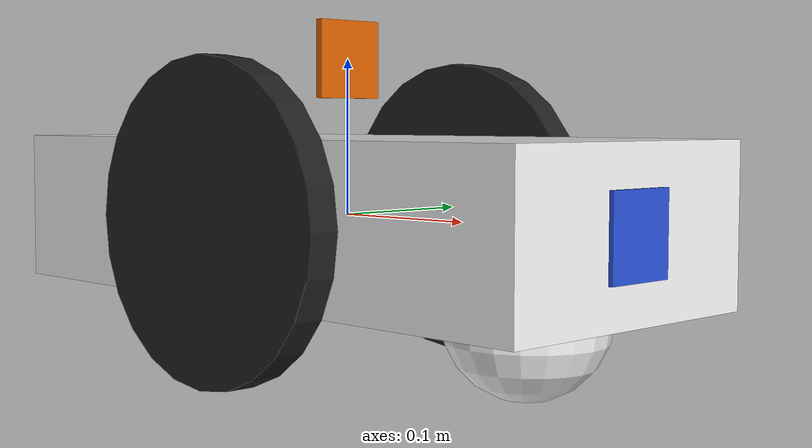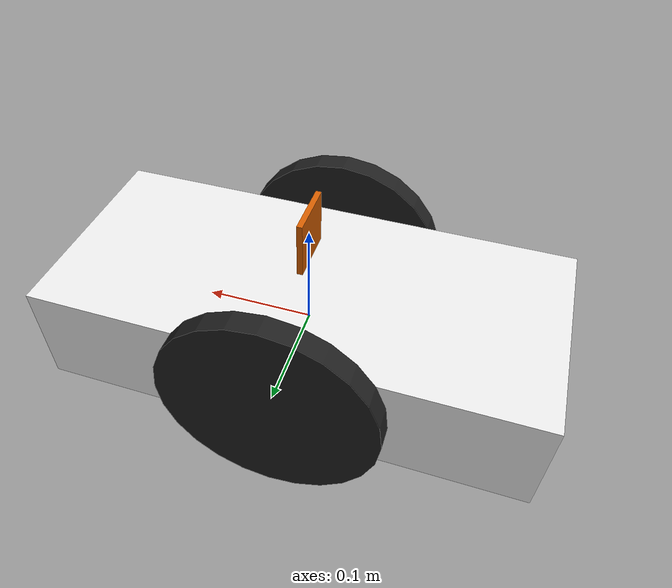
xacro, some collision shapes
<?xml version='1.0'?>

<robot name="my_robot" xmlns:xacro="http://www.ros.org/wiki/xacro">

  <xacro:include filename="$(find my_robot)/urdf/my_robot.gazebo" />

  <link name="robot_footprint"></link>

  <joint name="robot_footprint_joint" type="fixed">
    <origin xyz="0 0 0" rpy="0 0 0" />
    <parent link="robot_footprint"/>
    <child link="chassis" />
  </joint>

  <joint type="continuous" name="left_wheel_hinge">
    <origin xyz="0 0 0" rpy="0 0 0"/>
    <child link="left_wheel"/>
    <parent link="robot_footprint"/>
    <axis xyz="0 1 0" rpy="0 0 0"/>
    <limit effort="10000" velocity="1000"/>
    <dynamics damping="1.0" friction="1.0"/>
  </joint>

  <joint type="continuous" name="right_wheel_hinge">
    <origin xyz="0 0 0" rpy="0 0 0"/>
    <child link="right_wheel"/>
    <parent link="robot_footprint"/>
    <axis xyz="0 1 0" rpy="0 0 0"/>
    <limit effort="10000" velocity="1000"/>
    <dynamics damping="1.0" friction="1.0"/>
  </joint>

  <joint type="fixed" name="camera_joint">
    <origin xyz="0.225 0 0" rpy="0 0 0"/>
    <child link="camera"/>
    <parent link="chassis"/>
    <axis xyz="0 1 0" rpy="0 0 0"/>
    <limit effort="10000" velocity="1000"/>
    <dynamics damping="1.0" friction="1.0"/>
  </joint>

  <joint type="fixed" name="hokuyo_joint">
    <origin xyz="0 0 0.2" rpy="0 0 0"/>
    <child link="hokuyo"/>
    <parent link="chassis"/>
    <axis xyz="0 1 0" rpy="0 0 0"/>
    <limit effort="10000" velocity="1000"/>
    <dynamics damping="1.0" friction="1.0"/>
  </joint>

  <link name='chassis'>
    <pose>0 0 0 0 0 0</pose>

    <inertial>
      <mass value="15.0"/>
      <origin xyz="0.0 0 0" rpy=" 0 0 0"/>
      <inertia
          ixx="0.1" ixy="0" ixz="0"
          iyy="0.1" iyz="0"
          izz="0.1"
      />
    </inertial>

    <collision name='collision'>
      <origin xyz="0 0 0" rpy=" 0 0 0"/>
      <geometry>
        <box size=".45 .2 .1"/>
      </geometry>
    </collision>

    <visual name='chassis_visual'>
      <origin xyz="0 0 0" rpy=" 0 0 0"/>
      <geometry>
        <box size=".45 .2 .1"/>
      </geometry>
    </visual>

    <collision name='caster_collision_front'>
      <origin xyz="0.15 0 -0.05" rpy=" 0 0 0"/>
      <geometry>
        <sphere radius="0.05"/>
      </geometry>
    </collision>

    <visual name='caster_visual_front'>
      <origin xyz="0.15 0 -0.05" rpy=" 0 0 0"/>
      <geometry>
        <sphere radius="0.05"/>
      </geometry>
    </visual>

    <collision name='caster_collision_back'>
      <origin xyz="-0.15 0 -0.05" rpy=" 0 0 0"/>
      <geometry>
        <sphere radius="0.05"/>
      </geometry>
    </collision>

    <visual name='caster_visual_back'>
      <origin xyz="-0.15 0 -0.05" rpy=" 0 0 0"/>
      <geometry>
        <sphere radius="0.05"/>
      </geometry>
    </visual>

  </link>

<link name='left_wheel'>
    <pose>0 0 0 0 0 0</pose>

    <inertial>
      <mass value="2.0"/>
      <origin xyz="0 0 0" rpy=" 0 1.5707 1.5707"/>
      <inertia
          ixx="0.1" ixy="0" ixz="0"
          iyy="0.1" iyz="0"
          izz="0.1"
      />
    </inertial>

    <collision name='left_wheel_collision'>
      <origin xyz="0 0.11 0" rpy=" 0 1.5707 1.5707"/>
      <geometry>
        <cylinder length="0.02" radius="0.1"/>
      </geometry>
    </collision>

    <visual name='left_wheel_visual'>
      <origin xyz="0 0.11 0" rpy=" 0 1.5707 1.5707"/>
      <geometry>
        <cylinder length="0.02" radius="0.1"/>
      </geometry>
    </visual>
</link>

<link name='right_wheel'>
    <pose>0 0 0 0 0 0</pose>

    <inertial>
      <mass value="2.0"/>
      <origin xyz="0 0 0" rpy=" 0 1.5707 1.5707"/>
      <inertia
          ixx="0.1" ixy="0" ixz="0"
          iyy="0.1" iyz="0"
          izz="0.1"
      />
    </inertial>

    <collision name='right_wheel_collision'>
      <origin xyz="0 -0.11 0" rpy=" 0 1.5707 1.5707"/>
      <geometry>
        <cylinder length="0.02" radius="0.1"/>
      </geometry>
    </collision>

    <visual name='right_wheel_visual'>
      <origin xyz="0 -0.11 0" rpy=" 0 1.5707 1.5707"/>
      <geometry>
        <cylinder length="0.02" radius="0.1"/>
      </geometry>
    </visual>
</link>

<link name='camera'>
    <pose>0 0 0 0 0 0</pose>

    <inertial>
      <mass value="0.1"/>
      <origin xyz="0 0 0" rpy=" 0 0 0"/>
      <inertia
          ixx="1e-6" ixy="0" ixz="0"
          iyy="1e-6" iyz="0"
          izz="1e-6"
      />
    </inertial>

    <collision name='camera_collision'>
      <origin xyz="0 0 0" rpy=" 0 1.5707 1.5707"/>
      <geometry>
        <box size=".05 .005 .05"/>
      </geometry>
    </collision>

    <visual name='camera_visual'>
      <origin xyz="0 0 0" rpy=" 0 1.5707 1.5707"/>
      <geometry>
        <box size=".05 .005 .05"/>
      </geometry>
    </visual>
</link>

<link name="hokuyo">
    <pose>0 0 0 0 0 0</pose>

    <inertial>
      <mass value="1e-5"/>
      <origin xyz="0 0 0" rpy=" 0 0 0"/>
      <inertia
          ixx="1e-6" ixy="0" ixz="0"
          iyy="1e-6" iyz="0"
          izz="1e-6"
      />
    </inertial>

    <collision name='hokuyo_collision'>
      <origin xyz="0 0 -0.1" rpy=" 0 1.5707 1.5707"/>
      <geometry>
        <box size=".05 .005 .05"/>
      </geometry>
    </collision>

    <visual name='hokuyo_visual'>
      <origin xyz="0 0 -0.1" rpy=" 0 1.5707 1.5707"/>
      <geometry>
        <mesh filename="package://my_robot/meshes/hokuyo.dae"/>
	<box size=".05 .005 .05"/>
      </geometry>
    </visual>
</link>

<gazebo reference="left_wheel">
    <material>Gazebo/Black</material>
</gazebo>

<gazebo reference="right_wheel">
    <material>Gazebo/Black</material>
</gazebo>

<gazebo reference="chassis">
    <material>Gazebo/White</material>
</gazebo>

<gazebo reference="camera">
    <material>Gazebo/Blue</material>
</gazebo>

</robot>
